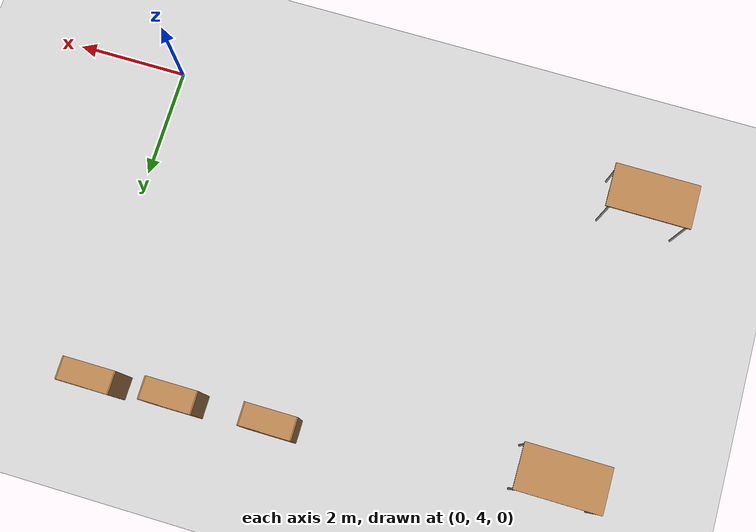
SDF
<sdf version="1.6">
 <world name="default">
  <model name="ground_plane">
   <static>1</static>
   <link name="link">
    <collision name="collision">
     <geometry><plane><normal>0 0 1</normal><size>100 100</size></plane></geometry>
     <surface>
      <contact><collide_bitmask>65535</collide_bitmask></contact>
      <friction><ode><mu>100</mu><mu2>50</mu2></ode></friction>
     </surface>
    </collision>
    <visual name="visual">
     <cast_shadows>0</cast_shadows>
     <geometry><plane><normal>0 0 1</normal><size>100 100</size></plane></geometry>
     <material>
      <script><uri>file://media/materials/scripts/gazebo.material</uri><name>Gazebo/Grey</name></script>
     </material>
    </visual>
   </link>
  </model>
  <model name="table_5">
   <static>1</static>
   <link name="link">
    <collision name="surface">
     <pose>0 0 1 0 -0 0</pose>
     <geometry><box><size>1.5 0.8 0.03</size></box></geometry>
     <surface><friction><ode><mu>0.6</mu><mu2>0.6</mu2></ode></friction></surface>
    </collision>
    <visual name="visual1">
     <pose>0 0 1 0 -0 0</pose>
     <geometry><box><size>1.5 0.8 0.03</size></box></geometry>
     <material>
      <script><uri>file://media/materials/scripts/gazebo.material</uri><name>Gazebo/Wood</name></script>
     </material>
    </visual>
    <collision name="front_left_leg">
     <pose>0.68 0.38 0.5 0 -0 0</pose>
     <geometry><cylinder><radius>0.02</radius><length>1</length></cylinder></geometry>
    </collision>
    <visual name="front_left_leg">
     <pose>0.68 0.38 0.5 0 -0 0</pose>
     <geometry><cylinder><radius>0.02</radius><length>1</length></cylinder></geometry>
     <material>
      <script><uri>file://media/materials/scripts/gazebo.material</uri><name>Gazebo/Grey</name></script>
     </material>
    </visual>
    <collision name="front_right_leg">
     <pose>0.68 -0.38 0.5 0 -0 0</pose>
     <geometry><cylinder><radius>0.02</radius><length>1</length></cylinder></geometry>
    </collision>
    <visual name="front_right_leg">
     <pose>0.68 -0.38 0.5 0 -0 0</pose>
     <geometry><cylinder><radius>0.02</radius><length>1</length></cylinder></geometry>
     <material>
      <script><uri>file://media/materials/scripts/gazebo.material</uri><name>Gazebo/Grey</name></script>
     </material>
    </visual>
    <collision name="back_right_leg">
     <pose>-0.68 -0.38 0.5 0 -0 0</pose>
     <geometry><cylinder><radius>0.02</radius><length>1</length></cylinder></geometry>
    </collision>
    <visual name="back_right_leg">
     <pose>-0.68 -0.38 0.5 0 -0 0</pose>
     <geometry><cylinder><radius>0.02</radius><length>1</length></cylinder></geometry>
     <material>
      <script><uri>file://media/materials/scripts/gazebo.material</uri><name>Gazebo/Grey</name></script>
     </material>
    </visual>
    <collision name="back_left_leg">
     <pose>-0.68 0.38 0.5 0 -0 0</pose>
     <geometry><cylinder><radius>0.02</radius><length>1</length></cylinder></geometry>
    </collision>
    <visual name="back_left_leg">
     <pose>-0.68 0.38 0.5 0 -0 0</pose>
     <geometry><cylinder><radius>0.02</radius><length>1</length></cylinder></geometry>
     <material>
      <script><uri>file://media/materials/scripts/gazebo.material</uri><name>Gazebo/Grey</name></script>
     </material>
    </visual>
   </link>
   <pose>-8.74912 4.16793 0 0 -0 0</pose>
  </model>
  <model name="table_6">
   <static>1</static>
   <link name="link">
    <collision name="surface">
     <pose>0 0 1 0 -0 0</pose>
     <geometry><box><size>1.5 0.8 0.03</size></box></geometry>
     <surface><friction><ode><mu>0.6</mu><mu2>0.6</mu2></ode></friction></surface>
    </collision>
    <visual name="visual1">
     <pose>0 0 1 0 -0 0</pose>
     <geometry><box><size>1.5 0.8 0.03</size></box></geometry>
     <material>
      <script><uri>file://media/materials/scripts/gazebo.material</uri><name>Gazebo/Wood</name></script>
     </material>
    </visual>
    <collision name="front_left_leg">
     <pose>0.68 0.38 0.5 0 -0 0</pose>
     <geometry><cylinder><radius>0.02</radius><length>1</length></cylinder></geometry>
    </collision>
    <visual name="front_left_leg">
     <pose>0.68 0.38 0.5 0 -0 0</pose>
     <geometry><cylinder><radius>0.02</radius><length>1</length></cylinder></geometry>
     <material>
      <script><uri>file://media/materials/scripts/gazebo.material</uri><name>Gazebo/Grey</name></script>
     </material>
    </visual>
    <collision name="front_right_leg">
     <pose>0.68 -0.38 0.5 0 -0 0</pose>
     <geometry><cylinder><radius>0.02</radius><length>1</length></cylinder></geometry>
    </collision>
    <visual name="front_right_leg">
     <pose>0.68 -0.38 0.5 0 -0 0</pose>
     <geometry><cylinder><radius>0.02</radius><length>1</length></cylinder></geometry>
     <material>
      <script><uri>file://media/materials/scripts/gazebo.material</uri><name>Gazebo/Grey</name></script>
     </material>
    </visual>
    <collision name="back_right_leg">
     <pose>-0.68 -0.38 0.5 0 -0 0</pose>
     <geometry><cylinder><radius>0.02</radius><length>1</length></cylinder></geometry>
    </collision>
    <visual name="back_right_leg">
     <pose>-0.68 -0.38 0.5 0 -0 0</pose>
     <geometry><cylinder><radius>0.02</radius><length>1</length></cylinder></geometry>
     <material>
      <script><uri>file://media/materials/scripts/gazebo.material</uri><name>Gazebo/Grey</name></script>
     </material>
    </visual>
    <collision name="back_left_leg">
     <pose>-0.68 0.38 0.5 0 -0 0</pose>
     <geometry><cylinder><radius>0.02</radius><length>1</length></cylinder></geometry>
    </collision>
    <visual name="back_left_leg">
     <pose>-0.68 0.38 0.5 0 -0 0</pose>
     <geometry><cylinder><radius>0.02</radius><length>1</length></cylinder></geometry>
     <material>
      <script><uri>file://media/materials/scripts/gazebo.material</uri><name>Gazebo/Grey</name></script>
     </material>
    </visual>
   </link>
   <pose>-8.42007 9.20639 0 0 -0 0</pose>
  </model>
  <model name="bookshelf_1">
   <static>1</static>
   <link name="link">
    <inertial><mass>1</mass></inertial>
    <collision name="back">
     <pose>0 0.005 0.6 0 -0 0</pose>
     <geometry><box><size>0.9 0.01 1.2</size></box></geometry>
    </collision>
    <visual name="visual1">
     <pose>0 0.005 0.6 0 -0 0</pose>
     <geometry><box><size>0.9 0.01 1.2</size></box></geometry>
     <material>
      <script><uri>file://media/materials/scripts/gazebo.material</uri><name>Gazebo/Wood</name></script>
     </material>
    </visual>
    <collision name="left_side">
     <pose>0.45 -0.195 0.6 0 -0 0</pose>
     <geometry><box><size>0.02 0.4 1.2</size></box></geometry>
    </collision>
    <visual name="visual2">
     <pose>0.45 -0.195 0.6 0 -0 0</pose>
     <geometry><box><size>0.02 0.4 1.2</size></box></geometry>
     <material>
      <script><uri>file://media/materials/scripts/gazebo.material</uri><name>Gazebo/Wood</name></script>
     </material>
    </visual>
    <collision name="right_side">
     <pose>-0.45 -0.195 0.6 0 -0 0</pose>
     <geometry><box><size>0.02 0.4 1.2</size></box></geometry>
    </collision>
    <visual name="visual3">
     <pose>-0.45 -0.195 0.6 0 -0 0</pose>
     <geometry><box><size>0.02 0.4 1.2</size></box></geometry>
     <material>
      <script><uri>file://media/materials/scripts/gazebo.material</uri><name>Gazebo/Wood</name></script>
     </material>
    </visual>
    <collision name="bottom">
     <pose>0 -0.195 0.03 0 -0 0</pose>
     <geometry><box><size>0.88 0.4 0.06</size></box></geometry>
    </collision>
    <visual name="visual4">
     <pose>0 -0.195 0.03 0 -0 0</pose>
     <geometry><box><size>0.88 0.4 0.06</size></box></geometry>
     <material>
      <script><uri>file://media/materials/scripts/gazebo.material</uri><name>Gazebo/Wood</name></script>
     </material>
    </visual>
    <collision name="top">
     <pose>0 -0.195 1.19 0 -0 0</pose>
     <geometry><box><size>0.88 0.4 0.02</size></box></geometry>
    </collision>
    <visual name="visual5">
     <pose>0 -0.195 1.19 0 -0 0</pose>
     <geometry><box><size>0.88 0.4 0.02</size></box></geometry>
     <material>
      <script><uri>file://media/materials/scripts/gazebo.material</uri><name>Gazebo/Wood</name></script>
     </material>
    </visual>
    <collision name="low_shelf">
     <pose>0 -0.195 0.43 0 -0 0</pose>
     <geometry><box><size>0.88 0.4 0.02</size></box></geometry>
    </collision>
    <visual name="visual6">
     <pose>0 -0.195 0.43 0 -0 0</pose>
     <geometry><box><size>0.88 0.4 0.02</size></box></geometry>
     <material>
      <script><uri>file://media/materials/scripts/gazebo.material</uri><name>Gazebo/Wood</name></script>
     </material>
    </visual>
    <collision name="high_shelf">
     <pose>0 -0.195 0.8 0 -0 0</pose>
     <geometry><box><size>0.88 0.4 0.02</size></box></geometry>
    </collision>
    <visual name="visual7">
     <pose>0 -0.195 0.8 0 -0 0</pose>
     <geometry><box><size>0.88 0.4 0.02</size></box></geometry>
     <material>
      <script><uri>file://media/materials/scripts/gazebo.material</uri><name>Gazebo/Wood</name></script>
     </material>
    </visual>
   </link>
   <pose>-3.56595 9.88048 0 0 -0 0</pose>
  </model>
  <model name="bookshelf_2">
   <static>1</static>
   <link name="link">
    <inertial><mass>1</mass></inertial>
    <collision name="back">
     <pose>0 0.005 0.6 0 -0 0</pose>
     <geometry><box><size>0.9 0.01 1.2</size></box></geometry>
    </collision>
    <visual name="visual1">
     <pose>0 0.005 0.6 0 -0 0</pose>
     <geometry><box><size>0.9 0.01 1.2</size></box></geometry>
     <material>
      <script><uri>file://media/materials/scripts/gazebo.material</uri><name>Gazebo/Wood</name></script>
     </material>
    </visual>
    <collision name="left_side">
     <pose>0.45 -0.195 0.6 0 -0 0</pose>
     <geometry><box><size>0.02 0.4 1.2</size></box></geometry>
    </collision>
    <visual name="visual2">
     <pose>0.45 -0.195 0.6 0 -0 0</pose>
     <geometry><box><size>0.02 0.4 1.2</size></box></geometry>
     <material>
      <script><uri>file://media/materials/scripts/gazebo.material</uri><name>Gazebo/Wood</name></script>
     </material>
    </visual>
    <collision name="right_side">
     <pose>-0.45 -0.195 0.6 0 -0 0</pose>
     <geometry><box><size>0.02 0.4 1.2</size></box></geometry>
    </collision>
    <visual name="visual3">
     <pose>-0.45 -0.195 0.6 0 -0 0</pose>
     <geometry><box><size>0.02 0.4 1.2</size></box></geometry>
     <material>
      <script><uri>file://media/materials/scripts/gazebo.material</uri><name>Gazebo/Wood</name></script>
     </material>
    </visual>
    <collision name="bottom">
     <pose>0 -0.195 0.03 0 -0 0</pose>
     <geometry><box><size>0.88 0.4 0.06</size></box></geometry>
    </collision>
    <visual name="visual4">
     <pose>0 -0.195 0.03 0 -0 0</pose>
     <geometry><box><size>0.88 0.4 0.06</size></box></geometry>
     <material>
      <script><uri>file://media/materials/scripts/gazebo.material</uri><name>Gazebo/Wood</name></script>
     </material>
    </visual>
    <collision name="top">
     <pose>0 -0.195 1.19 0 -0 0</pose>
     <geometry><box><size>0.88 0.4 0.02</size></box></geometry>
    </collision>
    <visual name="visual5">
     <pose>0 -0.195 1.19 0 -0 0</pose>
     <geometry><box><size>0.88 0.4 0.02</size></box></geometry>
     <material>
      <script><uri>file://media/materials/scripts/gazebo.material</uri><name>Gazebo/Wood</name></script>
     </material>
    </visual>
    <collision name="low_shelf">
     <pose>0 -0.195 0.43 0 -0 0</pose>
     <geometry><box><size>0.88 0.4 0.02</size></box></geometry>
    </collision>
    <visual name="visual6">
     <pose>0 -0.195 0.43 0 -0 0</pose>
     <geometry><box><size>0.88 0.4 0.02</size></box></geometry>
     <material>
      <script><uri>file://media/materials/scripts/gazebo.material</uri><name>Gazebo/Wood</name></script>
     </material>
    </visual>
    <collision name="high_shelf">
     <pose>0 -0.195 0.8 0 -0 0</pose>
     <geometry><box><size>0.88 0.4 0.02</size></box></geometry>
    </collision>
    <visual name="visual7">
     <pose>0 -0.195 0.8 0 -0 0</pose>
     <geometry><box><size>0.88 0.4 0.02</size></box></geometry>
     <material>
      <script><uri>file://media/materials/scripts/gazebo.material</uri><name>Gazebo/Wood</name></script>
     </material>
    </visual>
   </link>
   <pose>-1.88135 9.93507 0 0 -0 0</pose>
  </model>
  <model name="bookshelf_3">
   <static>1</static>
   <link name="link">
    <inertial><mass>1</mass></inertial>
    <collision name="back">
     <pose>0 0.005 0.6 0 -0 0</pose>
     <geometry><box><size>0.9 0.01 1.2</size></box></geometry>
    </collision>
    <visual name="visual1">
     <pose>0 0.005 0.6 0 -0 0</pose>
     <geometry><box><size>0.9 0.01 1.2</size></box></geometry>
     <material>
      <script><uri>file://media/materials/scripts/gazebo.material</uri><name>Gazebo/Wood</name></script>
     </material>
    </visual>
    <collision name="left_side">
     <pose>0.45 -0.195 0.6 0 -0 0</pose>
     <geometry><box><size>0.02 0.4 1.2</size></box></geometry>
    </collision>
    <visual name="visual2">
     <pose>0.45 -0.195 0.6 0 -0 0</pose>
     <geometry><box><size>0.02 0.4 1.2</size></box></geometry>
     <material>
      <script><uri>file://media/materials/scripts/gazebo.material</uri><name>Gazebo/Wood</name></script>
     </material>
    </visual>
    <collision name="right_side">
     <pose>-0.45 -0.195 0.6 0 -0 0</pose>
     <geometry><box><size>0.02 0.4 1.2</size></box></geometry>
    </collision>
    <visual name="visual3">
     <pose>-0.45 -0.195 0.6 0 -0 0</pose>
     <geometry><box><size>0.02 0.4 1.2</size></box></geometry>
     <material>
      <script><uri>file://media/materials/scripts/gazebo.material</uri><name>Gazebo/Wood</name></script>
     </material>
    </visual>
    <collision name="bottom">
     <pose>0 -0.195 0.03 0 -0 0</pose>
     <geometry><box><size>0.88 0.4 0.06</size></box></geometry>
    </collision>
    <visual name="visual4">
     <pose>0 -0.195 0.03 0 -0 0</pose>
     <geometry><box><size>0.88 0.4 0.06</size></box></geometry>
     <material>
      <script><uri>file://media/materials/scripts/gazebo.material</uri><name>Gazebo/Wood</name></script>
     </material>
    </visual>
    <collision name="top">
     <pose>0 -0.195 1.19 0 -0 0</pose>
     <geometry><box><size>0.88 0.4 0.02</size></box></geometry>
    </collision>
    <visual name="visual5">
     <pose>0 -0.195 1.19 0 -0 0</pose>
     <geometry><box><size>0.88 0.4 0.02</size></box></geometry>
     <material>
      <script><uri>file://media/materials/scripts/gazebo.material</uri><name>Gazebo/Wood</name></script>
     </material>
    </visual>
    <collision name="low_shelf">
     <pose>0 -0.195 0.43 0 -0 0</pose>
     <geometry><box><size>0.88 0.4 0.02</size></box></geometry>
    </collision>
    <visual name="visual6">
     <pose>0 -0.195 0.43 0 -0 0</pose>
     <geometry><box><size>0.88 0.4 0.02</size></box></geometry>
     <material>
      <script><uri>file://media/materials/scripts/gazebo.material</uri><name>Gazebo/Wood</name></script>
     </material>
    </visual>
    <collision name="high_shelf">
     <pose>0 -0.195 0.8 0 -0 0</pose>
     <geometry><box><size>0.88 0.4 0.02</size></box></geometry>
    </collision>
    <visual name="visual7">
     <pose>0 -0.195 0.8 0 -0 0</pose>
     <geometry><box><size>0.88 0.4 0.02</size></box></geometry>
     <material>
      <script><uri>file://media/materials/scripts/gazebo.material</uri><name>Gazebo/Wood</name></script>
     </material>
    </visual>
   </link>
   <pose>-0.483343 10.0065 0 0 -0 0</pose>
  </model>
 </world>
</sdf>
